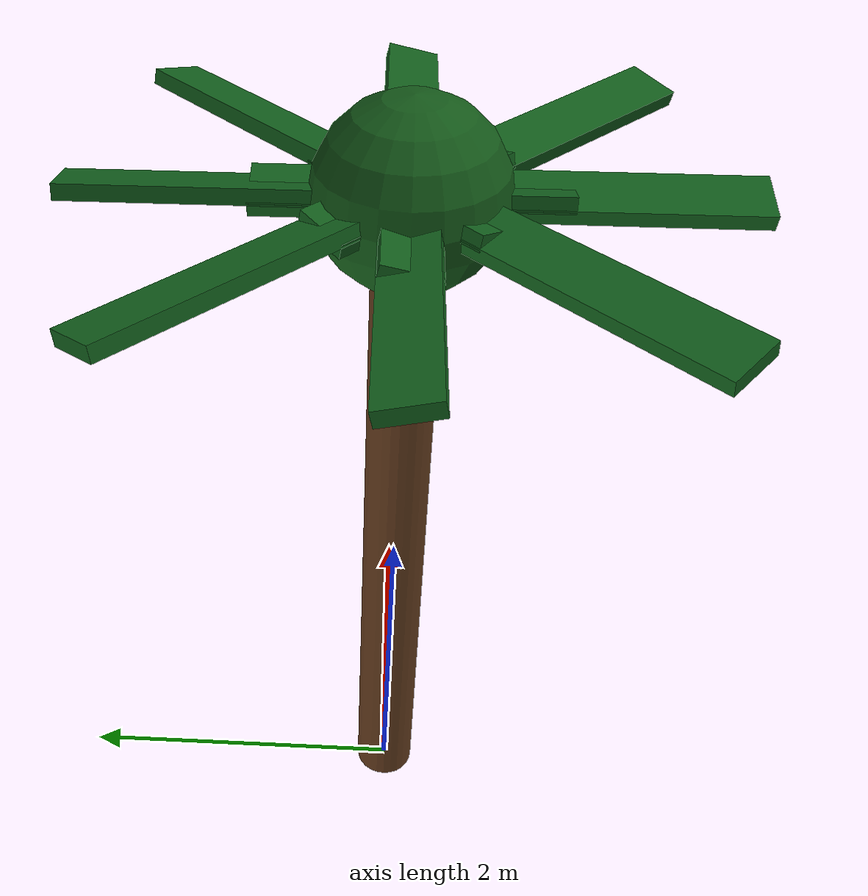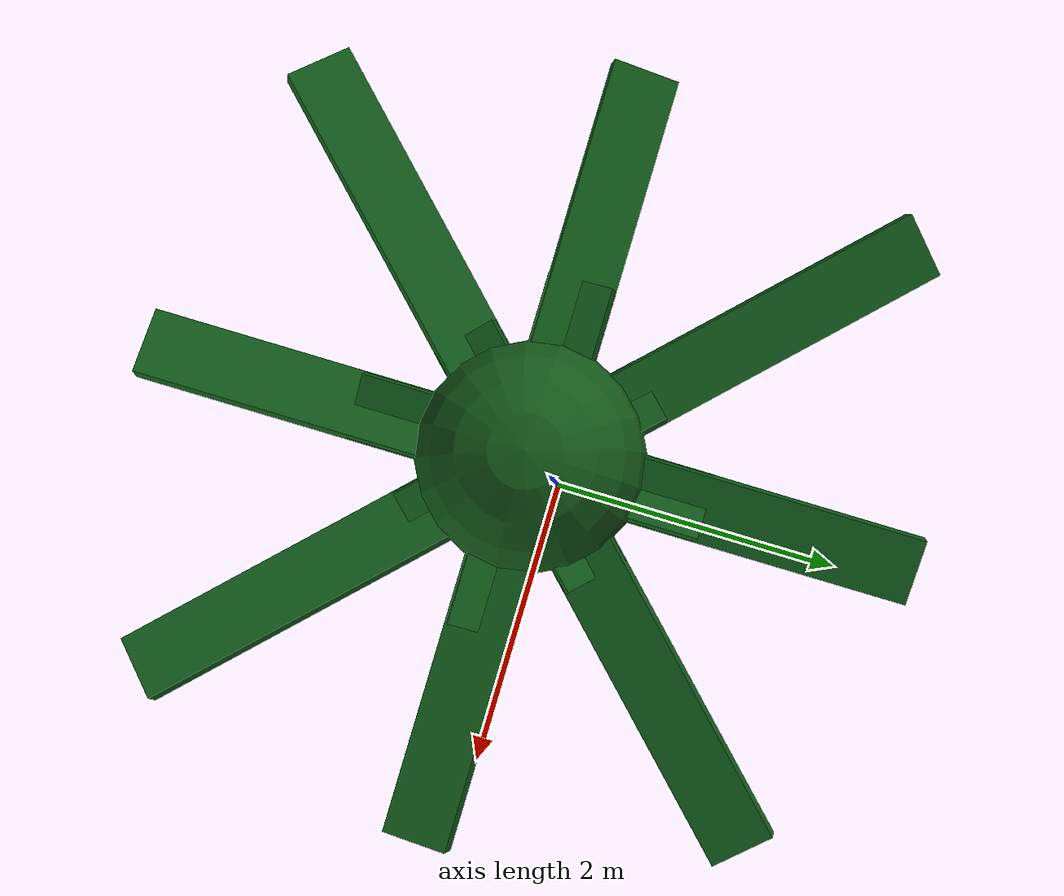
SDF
<?xml version="1.0"?>
<sdf version="1.9">
  <model name="oil_palm_small">
    <static>true</static>
    <link name="trunk">
      <pose>0 0 2.00 0 0 0</pose>
      <collision name="collision">
        <geometry><cylinder><radius>0.18</radius><length>4.00</length></cylinder></geometry>
      </collision>
      <visual name="ribbed_trunk">
        <geometry><cylinder><radius>0.18</radius><length>4.00</length></cylinder></geometry>
        <material><ambient>0.28 0.16 0.08 1</ambient><diffuse>0.40 0.24 0.12 1</diffuse><specular>0.03 0.02 0.01 1</specular></material>
      </visual>
    </link>
    <link name="crown">
      <pose>0 0 0 0 0 0</pose>
      <collision name="crown_collision">
        <pose>0 0 4.30 0 0 0</pose>
        <geometry><sphere><radius>1.01</radius></sphere></geometry>
      </collision>
      <visual name="crown_core">
        <pose>0 0 4.30 0 0 0</pose>
        <geometry><sphere><radius>0.48</radius></sphere></geometry>
        <material><ambient>0.04 0.22 0.07 1</ambient><diffuse>0.08 0.35 0.10 1</diffuse></material>
      </visual>
      <visual name="frond_00">
        <pose>0.45 0 4.30 0.22 0 0</pose>
        <geometry><box><size>2.40 0.28 0.08</size></box></geometry>
        <material><ambient>0.04 0.23 0.08 1</ambient><diffuse>0.07 0.37 0.11 1</diffuse><specular>0.02 0.05 0.02 1</specular></material>
      </visual>
      <visual name="frond_01">
        <pose>0.45 0.45 4.30 0.22 0 0.78539816339</pose>
        <geometry><box><size>2.40 0.28 0.08</size></box></geometry>
        <material><ambient>0.04 0.23 0.08 1</ambient><diffuse>0.07 0.37 0.11 1</diffuse><specular>0.02 0.05 0.02 1</specular></material>
      </visual>
      <visual name="frond_02">
        <pose>0 0.45 4.30 0.22 0 1.57079632679</pose>
        <geometry><box><size>2.40 0.28 0.08</size></box></geometry>
        <material><ambient>0.04 0.23 0.08 1</ambient><diffuse>0.07 0.37 0.11 1</diffuse><specular>0.02 0.05 0.02 1</specular></material>
      </visual>
      <visual name="frond_03">
        <pose>-0.45 0.45 4.30 0.22 0 2.35619449019</pose>
        <geometry><box><size>2.40 0.28 0.08</size></box></geometry>
        <material><ambient>0.04 0.23 0.08 1</ambient><diffuse>0.07 0.37 0.11 1</diffuse><specular>0.02 0.05 0.02 1</specular></material>
      </visual>
      <visual name="frond_04">
        <pose>-0.45 0 4.30 0.22 0 3.14159265359</pose>
        <geometry><box><size>2.40 0.28 0.08</size></box></geometry>
        <material><ambient>0.04 0.23 0.08 1</ambient><diffuse>0.07 0.37 0.11 1</diffuse><specular>0.02 0.05 0.02 1</specular></material>
      </visual>
      <visual name="frond_05">
        <pose>-0.45 -0.45 4.30 0.22 0 -2.35619449019</pose>
        <geometry><box><size>2.40 0.28 0.08</size></box></geometry>
        <material><ambient>0.04 0.23 0.08 1</ambient><diffuse>0.07 0.37 0.11 1</diffuse><specular>0.02 0.05 0.02 1</specular></material>
      </visual>
      <visual name="frond_06">
        <pose>0 -0.45 4.30 0.22 0 -1.57079632679</pose>
        <geometry><box><size>2.40 0.28 0.08</size></box></geometry>
        <material><ambient>0.04 0.23 0.08 1</ambient><diffuse>0.07 0.37 0.11 1</diffuse><specular>0.02 0.05 0.02 1</specular></material>
      </visual>
      <visual name="frond_07">
        <pose>0.45 -0.45 4.30 0.22 0 -0.78539816339</pose>
        <geometry><box><size>2.40 0.28 0.08</size></box></geometry>
        <material><ambient>0.04 0.23 0.08 1</ambient><diffuse>0.07 0.37 0.11 1</diffuse><specular>0.02 0.05 0.02 1</specular></material>
      </visual>
      <visual name="inflorescence_target">
        <pose>0.35 0 4.00 0 0 0</pose>
        <geometry><sphere><radius>0.15</radius></sphere></geometry>
        <material><ambient>0.65 0.45 0.08 1</ambient><diffuse>0.95 0.67 0.16 1</diffuse><specular>0.08 0.05 0.02 1</specular></material>
      </visual>
    </link>
  </model>
</sdf>
